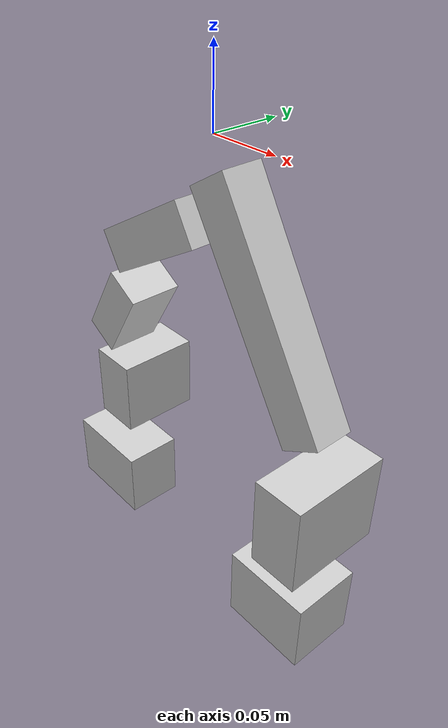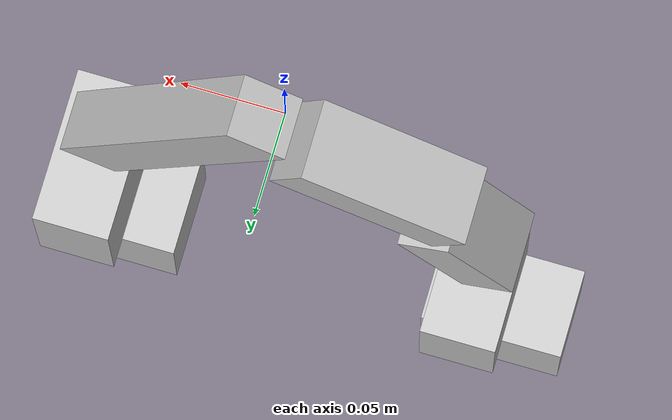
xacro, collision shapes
<robot name="escalador_movel" version="1.0">
  <joint name="J1" type="revolute">
    <limit lower="-3.14000" upper="3.14000" effort="0.00000" velocity="0.00000"/>
    <origin rpy="1.57080 0.00000 -3.14159" xyz="0.00004 -0.11823 0.02811"/>
    <parent link="LINK_2_visual_link"/>
    <child link="LINK_1_visual_link"/>
    <axis xyz="0.00000 0.00000 1.00000"/>
  </joint>
  <joint name="J2" type="revolute">
    <limit lower="-3.14000" upper="3.14000" effort="0.00000" velocity="0.00000"/>
    <origin rpy="0.00000 0.00000 -1.04649" xyz="-0.10207 -0.17231 -0.02796"/>
    <parent link="LINK_3_2"/>
    <child link="LINK_2_visual_link"/>
    <axis xyz="0.00000 0.00000 1.00000"/>
  </joint>
  <joint name="J3" type="revolute">
    <limit lower="-3.14000" upper="3.14000" effort="0.00000" velocity="0.00000"/>
    <origin rpy="1.57080 1.04720 -0.00000" xyz="0.00162 -0.02116 0.00162"/>
    <parent link="LINK_3_visual_link"/>
    <child link="LINK_4_visual_link"/>
    <axis xyz="0.00000 0.00000 1.00000"/>
  </joint>
  <joint name="J4" type="revolute">
    <limit lower="-3.14000" upper="3.14000" effort="0.00000" velocity="0.00000"/>
    <origin rpy="-1.57080 0.00000 0.50725" xyz="0.07277 -0.13084 -0.02010"/>
    <parent link="LINK_4_visual_link"/>
    <child link="LINK_5_visual_link"/>
    <axis xyz="0.00000 0.00000 1.00000"/>
  </joint>
  <joint name="J5" type="revolute">
    <limit lower="-3.14000" upper="3.14000" effort="0.00000" velocity="0.00000"/>
    <origin rpy="1.57080 -0.52360 0.00000" xyz="0.00005 -0.01886 -0.05053"/>
    <parent link="LINK_5_visual_link"/>
    <child link="LINK_6_visual_link"/>
    <axis xyz="0.00000 0.00000 1.00000"/>
  </joint>
  <joint name="J6" type="revolute">
    <limit lower="-3.14000" upper="3.14000" effort="0.00000" velocity="0.00000"/>
    <origin rpy="1.57080 0.00000 3.14159" xyz="0.00004 -0.11898 -0.02009"/>
    <parent link="LINK_6_visual_link"/>
    <child link="LINK_7_visual_link"/>
    <axis xyz="0.00000 0.00000 1.00000"/>
  </joint>
  <joint name="j3_2" type="revolute">
    <limit lower="-3.14000" upper="3.14000" effort="0.00000" velocity="0.00000"/>
    <origin rpy="1.57079 -1.04649 0.00000" xyz="0.00162 0.00016 0.00162"/>
    <parent link="LINK_3_visual_link"/>
    <child link="LINK_3_2"/>
    <axis xyz="0.00000 0.00000 1.00000"/>
  </joint>
  <link name="LINK_1_visual_link">
    <collision name="LINK_1_collision">
      <origin rpy="-0.00000 -0.00000 -0.00000" xyz="0.01035 0.00000 -0.03047"/>
      <geometry>
        <box size="0.07013 0.05471 0.06130"/>
      </geometry>
    </collision>
    <inertial>
      <inertia ixx="0.00004" ixy="0.00000" ixz="0.00001" iyy="0.00007" iyz="0.00000" izz="0.00005"/>
      <origin rpy="0.00000 0.00000 0.00000" xyz="0.00889 0.00002 -0.03303"/>
      <mass value="0.10000"/>
    </inertial>
    <visual name="LINK_1_visual">
      <origin rpy="0.00000 0.00000 -0.00000" xyz="0.00000 0.00000 0.00000"/>
      <material name="SILVER"/>
      <geometry>
        <mesh filename="file://$(find escalador_description_both)/meshes/ON-OFF-PAW-Alumínio_MEF.148.dae" scale="0.00100 0.00100 0.00100"/>
      </geometry>
    </visual>
  </link>
  <link name="LINK_2_visual_link">
    <collision name="LINK_2_collision">
      <origin rpy="-3.14159 -0.00000 0.00000" xyz="0.00000 -0.05789 0.02139"/>
      <geometry>
        <box size="0.03957 0.07267 0.07963"/>
      </geometry>
    </collision>
    <inertial>
      <inertia ixx="0.00011" ixy="0.00000" ixz="0.00000" iyy="0.00009" iyz="-0.00001" izz="0.00004"/>
      <origin rpy="0.00000 0.00000 0.00000" xyz="0.00003 -0.05457 0.02392"/>
      <mass value="0.10000"/>
    </inertial>
    <visual name="LINK_2_visual">
      <origin rpy="-0.00000 -0.00000 0.00000" xyz="-0.00000 0.00000 0.00000"/>
      <material name="ROBO"/>
      <geometry>
        <mesh filename="file://$(find escalador_description_both)/meshes/link_1_5.073.dae" scale="0.00100 0.00100 0.00100"/>
      </geometry>
    </visual>
  </link>
  <link name="LINK_3_2">
    <collision name="LINK_3_collision">
      <origin rpy="0.00000 0.00000 -0.50538" xyz="-0.05592 -0.09301 -0.00021"/>
      <geometry>
        <box size="0.03272 0.17192 0.03013"/>
      </geometry>
    </collision>
    <inertial>
      <inertia ixx="0.00034" ixy="0.00000" ixz="-0.00019" iyy="0.00045" iyz="0.00001" izz="0.00013"/>
      <origin rpy="0.00000 0.00000 0.00000" xyz="-0.04872 -0.07984 0.00133"/>
      <mass value="0.10000"/>
    </inertial>
    <visual name="LINK_3_visual">
      <origin rpy="-0.00000 0.00000 -0.00000" xyz="-0.00221 0.00059 0.00016"/>
      <material name="SILVER"/>
      <geometry>
        <mesh filename="file://$(find escalador_description_both)/meshes/link_2.dae" scale="0.00100 0.00100 0.00100"/>
      </geometry>
    </visual>
  </link>
  <link name="LINK_3_visual_link"/>
  <link name="LINK_4_visual_link">
    <collision name="LINK_4_collision">
      <origin rpy="-0.00000 0.00000 0.00000" xyz="0.04284 -0.07970 -0.02137"/>
      <geometry>
        <box size="0.03163 0.09384 0.03914"/>
      </geometry>
    </collision>
    <inertial>
      <inertia ixx="0.00013" ixy="0.00001" ixz="0.00006" iyy="0.00014" iyz="-0.00002" izz="0.00007"/>
      <origin rpy="0.00000 0.00000 0.00000" xyz="0.03805 -0.06580 -0.02396"/>
      <mass value="0.10000"/>
    </inertial>
    <visual name="LINK_4_visual">
      <origin rpy="-0.00000 -0.00000 -0.01635" xyz="-0.00000 -0.00000 0.00000"/>
      <material name="SILVER"/>
      <geometry>
        <mesh filename="file://$(find escalador_description_both)/meshes/link_3.076.dae" scale="0.00100 0.00100 0.00100"/>
      </geometry>
    </visual>
  </link>
  <link name="LINK_5_visual_link">
    <collision name="LINK_5_collision">
      <origin rpy="1.57080 0.01148 -0.00000" xyz="-0.00182 0.00039 -0.02867"/>
      <geometry>
        <box size="0.02969 0.06567 0.04125"/>
      </geometry>
    </collision>
    <inertial>
      <inertia ixx="0.00005" ixy="0.00000" ixz="0.00001" iyy="0.00005" iyz="-0.00000" izz="0.00003"/>
      <origin rpy="0.00000 0.00000 0.00000" xyz="0.00002 0.00023 -0.02469"/>
      <mass value="0.10000"/>
    </inertial>
    <visual name="LINK_5_visual">
      <origin rpy="1.57080 0.52299 -0.00000" xyz="0.00000 -0.00000 0.00000"/>
      <material name="ROBO"/>
      <geometry>
        <mesh filename="file://$(find escalador_description_both)/meshes/link_4.003.dae" scale="0.00100 0.00100 0.00100"/>
      </geometry>
    </visual>
  </link>
  <link name="LINK_6_visual_link">
    <collision name="LINK_6_collision">
      <origin rpy="-0.00000 -0.00000 -0.00000" xyz="0.00000 -0.06015 -0.03406"/>
      <geometry>
        <box size="0.03909 0.06148 0.06449"/>
      </geometry>
    </collision>
    <inertial>
      <inertia ixx="0.00011" ixy="0.00000" ixz="0.00000" iyy="0.00009" iyz="-0.00001" izz="0.00004"/>
      <origin rpy="0.00000 0.00000 0.00000" xyz="0.00004 -0.05486 -0.02428"/>
      <mass value="0.10000"/>
    </inertial>
    <visual name="LINK_6_visual">
      <origin rpy="-0.00000 -0.00000 -0.00000" xyz="0.00000 -0.00000 -0.00000"/>
      <material name="SILVER"/>
      <geometry>
        <mesh filename="file://$(find escalador_description_both)/meshes/link_1_5.003.dae" scale="0.00100 0.00100 0.00100"/>
      </geometry>
    </visual>
  </link>
  <link name="LINK_7_visual_link">
    <collision name="LINK_7_collision">
      <origin rpy="-0.00000 -0.00000 -0.00000" xyz="0.01285 -0.00000 -0.03189"/>
      <geometry>
        <box size="0.07521 0.04705 0.05898"/>
      </geometry>
    </collision>
    <inertial>
      <inertia ixx="0.00004" ixy="0.00000" ixz="0.00001" iyy="0.00007" iyz="0.00000" izz="0.00005"/>
      <origin rpy="0.00000 0.00000 0.00000" xyz="0.00889 0.00002 -0.03253"/>
      <mass value="0.10000"/>
    </inertial>
    <visual name="LINK_7_visual">
      <origin rpy="-0.00000 -0.00000 -0.00000" xyz="0.00000 -0.00000 -0.00000"/>
      <material name="ROBO"/>
      <geometry>
        <mesh filename="file://$(find escalador_description_both)/meshes/ON-OFF-PAW-Alumínio_MEF.050.dae" scale="0.00100 0.00100 0.00100"/>
      </geometry>
    </visual>
  </link>
  <material name="ROBO">
    <color rgba="0.80000 0.80000 0.80000 1.00000"/>
  </material>
  <material name="SILVER">
    <color rgba="0.80000 0.80000 0.80000 1.00000"/>
  </material>
</robot>
